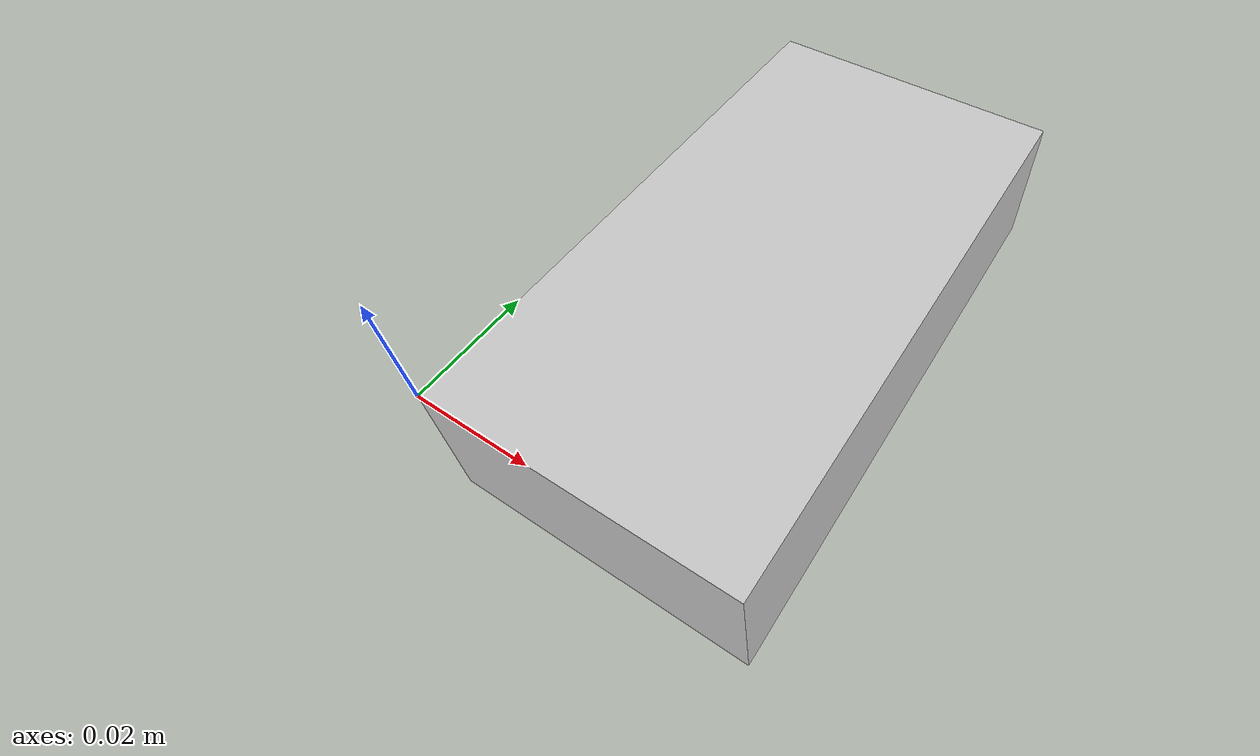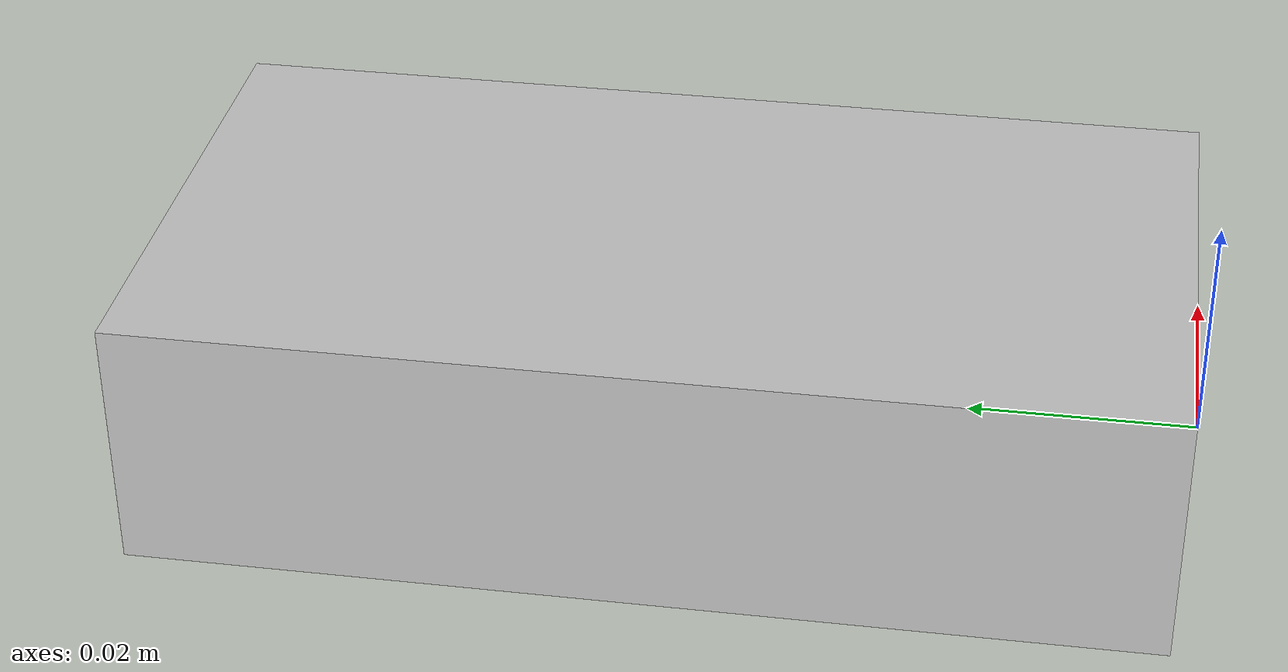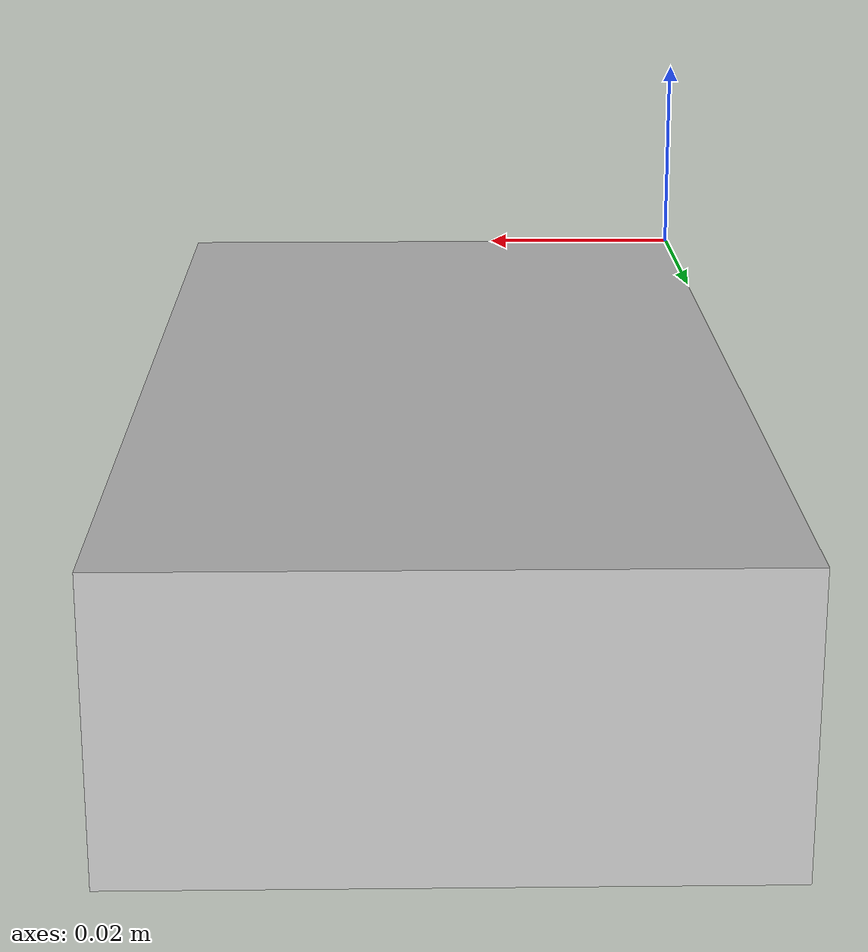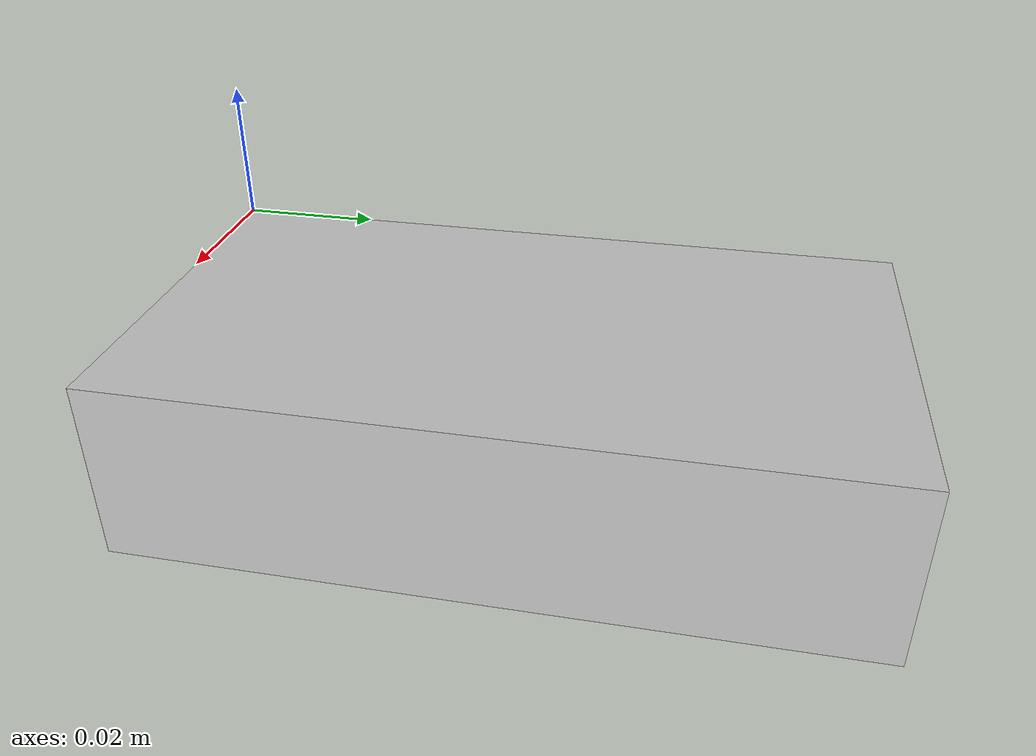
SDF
<?xml version="1.0" ?>
<sdf version="1.4">
  <model name="z_cleaner">
    <link name="z_cleaner_link">
      <inertial>
        <pose>-0.00 0.0 -0.005 0 0 0</pose>
        <mass>0.8</mass>
        <inertia>
          <ixx>0.001667</ixx>
	  <ixy>0.0</ixy>
	  <ixz>0.0</ixz>
	  <iyy>0.001667</iyy>
	  <iyz>0.0</iyz>
	  <izz>0.001667</izz>
	</inertia>
      </inertial>

      <visual name="z_cleaner_visual">
        <pose>0 0 0 -1.57079632679489 0 0 </pose>
        <material>
	  <lighting>1</lighting>
	  <ambient>0.2 0.2 0.2 1</ambient>
	  <diffuse>0.8 0.8 0.8 1</diffuse>
	  <specular>0.2 0.2 0.2 1</specular>
	  <emissive>0.55 0.55 0.55 1</emissive>
          <script>
            <uri>model://z_cleaner/materials/scripts</uri>
            <uri>model://z_cleaner/materials/textures</uri>
            <name>Z_cleaner/Image</name>
          </script>
        </material>
        <geometry>
          <mesh>
            <uri>model://z_cleaner/meshes/z_cleaner.dae</uri>
	    <scale>0.3 0.5 0.4</scale>
          </mesh>
        </geometry>
      </visual>

      <collision name="z_cleaner_collision">
        <pose>-0.0 0.0 +0.015 0.0 0.0 0.0</pose>
        <geometry>
	  <cylinder>
	    <radius>0.012</radius>
	    <length>0.04</length>
	  </cylinder>
        </geometry>
        <max_contacts>10</max_contacts>
        <surface>
          <contact>
	    <ode>
	      <max_vel>0.000</max_vel>
            </ode>
          </contact>
          <bounce/>
          <friction>
            <torsional>
              <ode/>
            </torsional>
            <ode>
              <mu>1</mu>
              <mu2>1</mu2>
            </ode>
          </friction>
        </surface>
      </collision>
      <self_collide>0</self_collide>
      <kinematic>0</kinematic>
    </link>
  </model>
</sdf>
